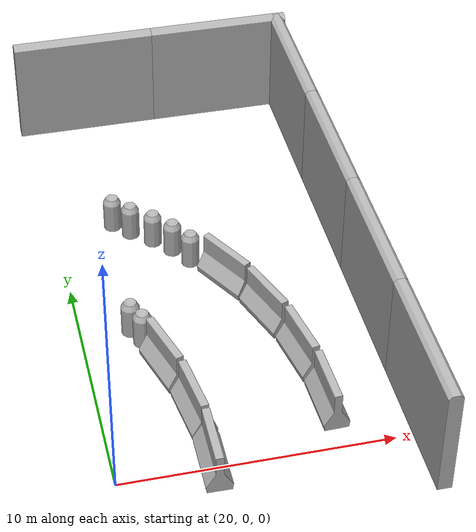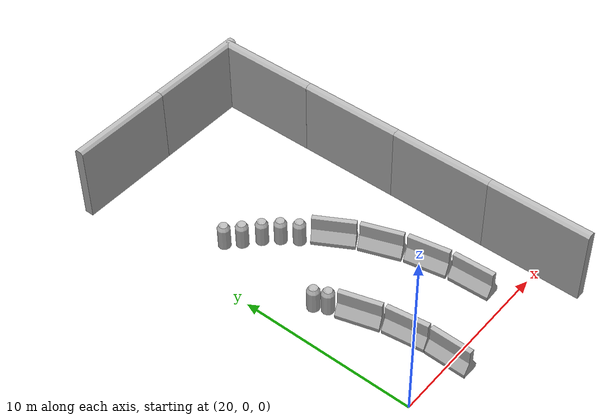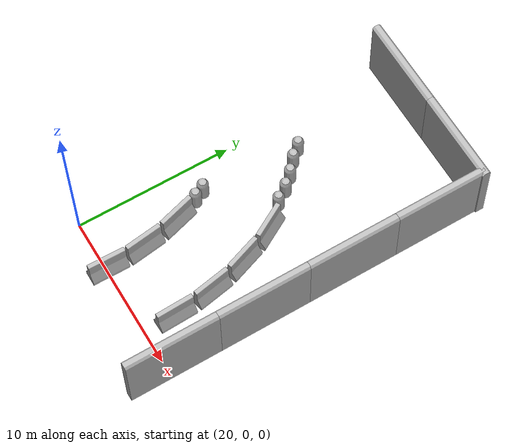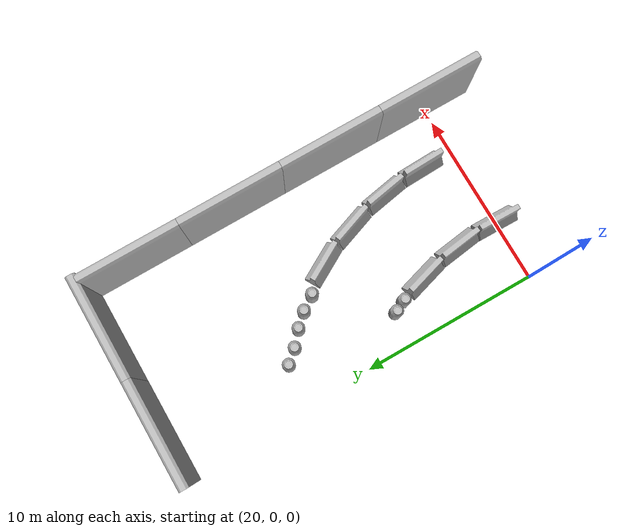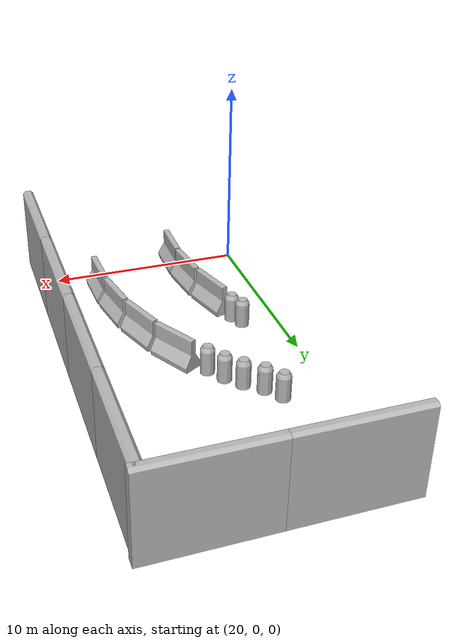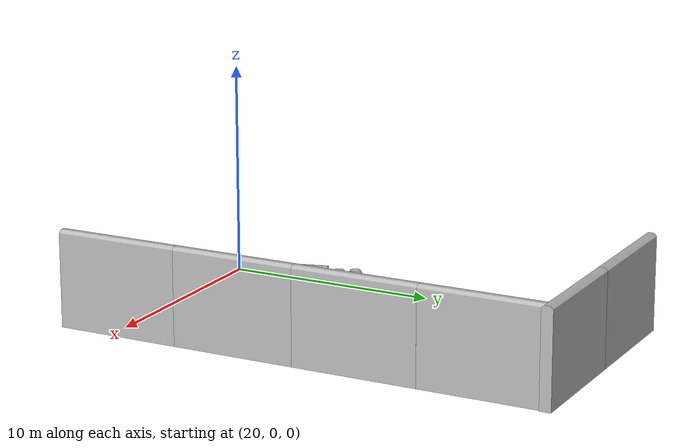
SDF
<sdf version="1.7">
 <world name="default">
  <model name="aws_robomaker_racetrack_CrashworthBucket_01_10">
   <frame name="aws_CrashworthBucket_01::__model__" attached_to="aws_CrashworthBucket_01::body">
    <pose relative_to="__model__">0 0 0 0 -0 0</pose>
   </frame>
   <link name="aws_CrashworthBucket_01::body">
    <pose relative_to="aws_CrashworthBucket_01::__model__">0 0 0 0 -0 0</pose>
    <inertial>
     <mass>5</mass>
     <inertia><ixx>1</ixx><ixy>0</ixy><ixz>0</ixz><iyy>1</iyy><iyz>0</iyz><izz>1</izz></inertia>
    </inertial>
    <visual name="visual">
     <geometry>
      <mesh>
       <uri>file://models/aws_robomaker_racetrack_CrashworthBucket_01/meshes/aws_CrashworthBucket_01_visual.DAE</uri>
      </mesh>
     </geometry>
     <material><shader type="pixel"><normal_map>__default__</normal_map></shader></material>
     <meta><layer>0</layer></meta>
    </visual>
    <collision name="collision_0">
     <geometry>
      <mesh>
       <uri>file://models/aws_robomaker_racetrack_CrashworthBucket_01/meshes/aws_CrashworthBucket_01_collision.DAE</uri>
       <scale>1 1 1</scale>
      </mesh>
     </geometry>
     <surface>
      <friction>
       <ode><mu>1</mu><mu2>1</mu2><fdir1>0 0 0</fdir1><slip1>0</slip1><slip2>0</slip2></ode>
       <torsional>
        <coefficient>1</coefficient>
        <patch_radius>0</patch_radius>
        <surface_radius>0</surface_radius>
        <use_patch_radius>1</use_patch_radius>
        <ode><slip>0</slip></ode>
       </torsional>
      </friction>
      <bounce><restitution_coefficient>0</restitution_coefficient><threshold>1e+06</threshold></bounce>
      <contact>
       <collide_without_contact>0</collide_without_contact>
       <collide_without_contact_bitmask>1</collide_without_contact_bitmask>
       <collide_bitmask>1</collide_bitmask>
       <ode>
        <soft_cfm>0</soft_cfm>
        <soft_erp>0.2</soft_erp>
        <kp>1e+13</kp>
        <kd>1</kd>
        <max_vel>0.01</max_vel>
        <min_depth>0</min_depth>
       </ode>
       <bullet>
        <split_impulse>1</split_impulse>
        <split_impulse_penetration_threshold>-0.01</split_impulse_penetration_threshold>
        <soft_cfm>0</soft_cfm>
        <soft_erp>0.2</soft_erp>
        <kp>1e+13</kp>
        <kd>1</kd>
       </bullet>
      </contact>
     </surface>
    </collision>
   </link>
   <static>1</static>
   <pose>22.2917 13.5697 0 0 -0 0</pose>
  </model>
  <model name="aws_robomaker_racetrack_CrashworthBucket_01_11">
   <frame name="aws_CrashworthBucket_01::__model__" attached_to="aws_CrashworthBucket_01::body">
    <pose relative_to="__model__">0 0 0 0 -0 0</pose>
   </frame>
   <link name="aws_CrashworthBucket_01::body">
    <pose relative_to="aws_CrashworthBucket_01::__model__">0 0 0 0 -0 0</pose>
    <inertial>
     <mass>5</mass>
     <inertia><ixx>1</ixx><ixy>0</ixy><ixz>0</ixz><iyy>1</iyy><iyz>0</iyz><izz>1</izz></inertia>
    </inertial>
    <visual name="visual">
     <geometry>
      <mesh>
       <uri>file://models/aws_robomaker_racetrack_CrashworthBucket_01/meshes/aws_CrashworthBucket_01_visual.DAE</uri>
      </mesh>
     </geometry>
     <material><shader type="pixel"><normal_map>__default__</normal_map></shader></material>
     <meta><layer>0</layer></meta>
    </visual>
    <collision name="collision_0">
     <geometry>
      <mesh>
       <uri>file://models/aws_robomaker_racetrack_CrashworthBucket_01/meshes/aws_CrashworthBucket_01_collision.DAE</uri>
       <scale>1 1 1</scale>
      </mesh>
     </geometry>
     <surface>
      <friction>
       <ode><mu>1</mu><mu2>1</mu2><fdir1>0 0 0</fdir1><slip1>0</slip1><slip2>0</slip2></ode>
       <torsional>
        <coefficient>1</coefficient>
        <patch_radius>0</patch_radius>
        <surface_radius>0</surface_radius>
        <use_patch_radius>1</use_patch_radius>
        <ode><slip>0</slip></ode>
       </torsional>
      </friction>
      <bounce><restitution_coefficient>0</restitution_coefficient><threshold>1e+06</threshold></bounce>
      <contact>
       <collide_without_contact>0</collide_without_contact>
       <collide_without_contact_bitmask>1</collide_without_contact_bitmask>
       <collide_bitmask>1</collide_bitmask>
       <ode>
        <soft_cfm>0</soft_cfm>
        <soft_erp>0.2</soft_erp>
        <kp>1e+13</kp>
        <kd>1</kd>
        <max_vel>0.01</max_vel>
        <min_depth>0</min_depth>
       </ode>
       <bullet>
        <split_impulse>1</split_impulse>
        <split_impulse_penetration_threshold>-0.01</split_impulse_penetration_threshold>
        <soft_cfm>0</soft_cfm>
        <soft_erp>0.2</soft_erp>
        <kp>1e+13</kp>
        <kd>1</kd>
       </bullet>
      </contact>
     </surface>
    </collision>
   </link>
   <static>1</static>
   <pose>22.9018 12.8693 0.054 0 -0 0</pose>
  </model>
  <model name="aws_robomaker_racetrack_CrashworthBucket_01_12">
   <frame name="aws_CrashworthBucket_01::__model__" attached_to="aws_CrashworthBucket_01::body">
    <pose relative_to="__model__">0 0 0 0 -0 0</pose>
   </frame>
   <link name="aws_CrashworthBucket_01::body">
    <pose relative_to="aws_CrashworthBucket_01::__model__">0 0 0 0 -0 0</pose>
    <inertial>
     <mass>5</mass>
     <inertia><ixx>1</ixx><ixy>0</ixy><ixz>0</ixz><iyy>1</iyy><iyz>0</iyz><izz>1</izz></inertia>
    </inertial>
    <visual name="visual">
     <geometry>
      <mesh>
       <uri>file://models/aws_robomaker_racetrack_CrashworthBucket_01/meshes/aws_CrashworthBucket_01_visual.DAE</uri>
      </mesh>
     </geometry>
     <material><shader type="pixel"><normal_map>__default__</normal_map></shader></material>
     <meta><layer>0</layer></meta>
    </visual>
    <collision name="collision_0">
     <geometry>
      <mesh>
       <uri>file://models/aws_robomaker_racetrack_CrashworthBucket_01/meshes/aws_CrashworthBucket_01_collision.DAE</uri>
       <scale>1 1 1</scale>
      </mesh>
     </geometry>
     <surface>
      <friction>
       <ode><mu>1</mu><mu2>1</mu2><fdir1>0 0 0</fdir1><slip1>0</slip1><slip2>0</slip2></ode>
       <torsional>
        <coefficient>1</coefficient>
        <patch_radius>0</patch_radius>
        <surface_radius>0</surface_radius>
        <use_patch_radius>1</use_patch_radius>
        <ode><slip>0</slip></ode>
       </torsional>
      </friction>
      <bounce><restitution_coefficient>0</restitution_coefficient><threshold>1e+06</threshold></bounce>
      <contact>
       <collide_without_contact>0</collide_without_contact>
       <collide_without_contact_bitmask>1</collide_without_contact_bitmask>
       <collide_bitmask>1</collide_bitmask>
       <ode>
        <soft_cfm>0</soft_cfm>
        <soft_erp>0.2</soft_erp>
        <kp>1e+13</kp>
        <kd>1</kd>
        <max_vel>0.01</max_vel>
        <min_depth>0</min_depth>
       </ode>
       <bullet>
        <split_impulse>1</split_impulse>
        <split_impulse_penetration_threshold>-0.01</split_impulse_penetration_threshold>
        <soft_cfm>0</soft_cfm>
        <soft_erp>0.2</soft_erp>
        <kp>1e+13</kp>
        <kd>1</kd>
       </bullet>
      </contact>
     </surface>
    </collision>
   </link>
   <static>1</static>
   <pose>22.2128 6.62693 0.054 0 -0 0</pose>
  </model>
  <model name="aws_robomaker_racetrack_CrashworthBucket_01_29">
   <frame name="aws_CrashworthBucket_01::__model__" attached_to="aws_CrashworthBucket_01::body">
    <pose relative_to="__model__">0 0 0 0 -0 0</pose>
   </frame>
   <link name="aws_CrashworthBucket_01::body">
    <pose relative_to="aws_CrashworthBucket_01::__model__">0 0 0 0 -0 0</pose>
    <inertial>
     <mass>5</mass>
     <inertia><ixx>1</ixx><ixy>0</ixy><ixz>0</ixz><iyy>1</iyy><iyz>0</iyz><izz>1</izz></inertia>
    </inertial>
    <visual name="visual">
     <geometry>
      <mesh>
       <uri>file://models/aws_robomaker_racetrack_CrashworthBucket_01/meshes/aws_CrashworthBucket_01_visual.DAE</uri>
      </mesh>
     </geometry>
     <material><shader type="pixel"><normal_map>__default__</normal_map></shader></material>
     <meta><layer>0</layer></meta>
    </visual>
    <collision name="collision_0">
     <geometry>
      <mesh>
       <uri>file://models/aws_robomaker_racetrack_CrashworthBucket_01/meshes/aws_CrashworthBucket_01_collision.DAE</uri>
       <scale>1 1 1</scale>
      </mesh>
     </geometry>
     <surface>
      <friction>
       <ode><mu>1</mu><mu2>1</mu2><fdir1>0 0 0</fdir1><slip1>0</slip1><slip2>0</slip2></ode>
       <torsional>
        <coefficient>1</coefficient>
        <patch_radius>0</patch_radius>
        <surface_radius>0</surface_radius>
        <use_patch_radius>1</use_patch_radius>
        <ode><slip>0</slip></ode>
       </torsional>
      </friction>
      <bounce><restitution_coefficient>0</restitution_coefficient><threshold>1e+06</threshold></bounce>
      <contact>
       <collide_without_contact>0</collide_without_contact>
       <collide_without_contact_bitmask>1</collide_without_contact_bitmask>
       <collide_bitmask>1</collide_bitmask>
       <ode>
        <soft_cfm>0</soft_cfm>
        <soft_erp>0.2</soft_erp>
        <kp>1e+13</kp>
        <kd>1</kd>
        <max_vel>0.01</max_vel>
        <min_depth>0</min_depth>
       </ode>
       <bullet>
        <split_impulse>1</split_impulse>
        <split_impulse_penetration_threshold>-0.01</split_impulse_penetration_threshold>
        <soft_cfm>0</soft_cfm>
        <soft_erp>0.2</soft_erp>
        <kp>1e+13</kp>
        <kd>1</kd>
       </bullet>
      </contact>
     </surface>
    </collision>
   </link>
   <static>1</static>
   <pose>23.6827 12.1956 0.054 0 -0 0</pose>
  </model>
  <model name="aws_robomaker_racetrack_CrashworthBucket_01_30">
   <frame name="aws_CrashworthBucket_01::__model__" attached_to="aws_CrashworthBucket_01::body">
    <pose relative_to="__model__">0 0 0 0 -0 0</pose>
   </frame>
   <link name="aws_CrashworthBucket_01::body">
    <pose relative_to="aws_CrashworthBucket_01::__model__">0 0 0 0 -0 0</pose>
    <inertial>
     <mass>5</mass>
     <inertia><ixx>1</ixx><ixy>0</ixy><ixz>0</ixz><iyy>1</iyy><iyz>0</iyz><izz>1</izz></inertia>
    </inertial>
    <visual name="visual">
     <geometry>
      <mesh>
       <uri>file://models/aws_robomaker_racetrack_CrashworthBucket_01/meshes/aws_CrashworthBucket_01_visual.DAE</uri>
      </mesh>
     </geometry>
     <material><shader type="pixel"><normal_map>__default__</normal_map></shader></material>
     <meta><layer>0</layer></meta>
    </visual>
    <collision name="collision_0">
     <geometry>
      <mesh>
       <uri>file://models/aws_robomaker_racetrack_CrashworthBucket_01/meshes/aws_CrashworthBucket_01_collision.DAE</uri>
       <scale>1 1 1</scale>
      </mesh>
     </geometry>
     <surface>
      <friction>
       <ode><mu>1</mu><mu2>1</mu2><fdir1>0 0 0</fdir1><slip1>0</slip1><slip2>0</slip2></ode>
       <torsional>
        <coefficient>1</coefficient>
        <patch_radius>0</patch_radius>
        <surface_radius>0</surface_radius>
        <use_patch_radius>1</use_patch_radius>
        <ode><slip>0</slip></ode>
       </torsional>
      </friction>
      <bounce><restitution_coefficient>0</restitution_coefficient><threshold>1e+06</threshold></bounce>
      <contact>
       <collide_without_contact>0</collide_without_contact>
       <collide_without_contact_bitmask>1</collide_without_contact_bitmask>
       <collide_bitmask>1</collide_bitmask>
       <ode>
        <soft_cfm>0</soft_cfm>
        <soft_erp>0.2</soft_erp>
        <kp>1e+13</kp>
        <kd>1</kd>
        <max_vel>0.01</max_vel>
        <min_depth>0</min_depth>
       </ode>
       <bullet>
        <split_impulse>1</split_impulse>
        <split_impulse_penetration_threshold>-0.01</split_impulse_penetration_threshold>
        <soft_cfm>0</soft_cfm>
        <soft_erp>0.2</soft_erp>
        <kp>1e+13</kp>
        <kd>1</kd>
       </bullet>
      </contact>
     </surface>
    </collision>
   </link>
   <static>1</static>
   <pose>24.3346 11.4874 0.054 0 -0 0</pose>
  </model>
  <model name="aws_robomaker_racetrack_CrashworthBucket_01_31">
   <frame name="aws_CrashworthBucket_01::__model__" attached_to="aws_CrashworthBucket_01::body">
    <pose relative_to="__model__">0 0 0 0 -0 0</pose>
   </frame>
   <link name="aws_CrashworthBucket_01::body">
    <pose relative_to="aws_CrashworthBucket_01::__model__">0 0 0 0 -0 0</pose>
    <inertial>
     <mass>5</mass>
     <inertia><ixx>1</ixx><ixy>0</ixy><ixz>0</ixz><iyy>1</iyy><iyz>0</iyz><izz>1</izz></inertia>
    </inertial>
    <visual name="visual">
     <geometry>
      <mesh>
       <uri>file://models/aws_robomaker_racetrack_CrashworthBucket_01/meshes/aws_CrashworthBucket_01_visual.DAE</uri>
      </mesh>
     </geometry>
     <material><shader type="pixel"><normal_map>__default__</normal_map></shader></material>
     <meta><layer>0</layer></meta>
    </visual>
    <collision name="collision_0">
     <geometry>
      <mesh>
       <uri>file://models/aws_robomaker_racetrack_CrashworthBucket_01/meshes/aws_CrashworthBucket_01_collision.DAE</uri>
       <scale>1 1 1</scale>
      </mesh>
     </geometry>
     <surface>
      <friction>
       <ode><mu>1</mu><mu2>1</mu2><fdir1>0 0 0</fdir1><slip1>0</slip1><slip2>0</slip2></ode>
       <torsional>
        <coefficient>1</coefficient>
        <patch_radius>0</patch_radius>
        <surface_radius>0</surface_radius>
        <use_patch_radius>1</use_patch_radius>
        <ode><slip>0</slip></ode>
       </torsional>
      </friction>
      <bounce><restitution_coefficient>0</restitution_coefficient><threshold>1e+06</threshold></bounce>
      <contact>
       <collide_without_contact>0</collide_without_contact>
       <collide_without_contact_bitmask>1</collide_without_contact_bitmask>
       <collide_bitmask>1</collide_bitmask>
       <ode>
        <soft_cfm>0</soft_cfm>
        <soft_erp>0.2</soft_erp>
        <kp>1e+13</kp>
        <kd>1</kd>
        <max_vel>0.01</max_vel>
        <min_depth>0</min_depth>
       </ode>
       <bullet>
        <split_impulse>1</split_impulse>
        <split_impulse_penetration_threshold>-0.01</split_impulse_penetration_threshold>
        <soft_cfm>0</soft_cfm>
        <soft_erp>0.2</soft_erp>
        <kp>1e+13</kp>
        <kd>1</kd>
       </bullet>
      </contact>
     </surface>
    </collision>
   </link>
   <static>1</static>
   <pose>24.8882 10.6788 0.054 0 -0 0</pose>
  </model>
  <model name="aws_robomaker_racetrack_CrashworthBucket_01_37">
   <frame name="aws_CrashworthBucket_01::__model__" attached_to="aws_CrashworthBucket_01::body">
    <pose relative_to="__model__">0 0 0 0 -0 0</pose>
   </frame>
   <link name="aws_CrashworthBucket_01::body">
    <pose relative_to="aws_CrashworthBucket_01::__model__">0 0 0 0 -0 0</pose>
    <inertial>
     <mass>5</mass>
     <inertia><ixx>1</ixx><ixy>0</ixy><ixz>0</ixz><iyy>1</iyy><iyz>0</iyz><izz>1</izz></inertia>
    </inertial>
    <visual name="visual">
     <geometry>
      <mesh>
       <uri>file://models/aws_robomaker_racetrack_CrashworthBucket_01/meshes/aws_CrashworthBucket_01_visual.DAE</uri>
      </mesh>
     </geometry>
     <material><shader type="pixel"><normal_map>__default__</normal_map></shader></material>
     <meta><layer>0</layer></meta>
    </visual>
    <collision name="collision_0">
     <geometry>
      <mesh>
       <uri>file://models/aws_robomaker_racetrack_CrashworthBucket_01/meshes/aws_CrashworthBucket_01_collision.DAE</uri>
       <scale>1 1 1</scale>
      </mesh>
     </geometry>
     <surface>
      <friction>
       <ode><mu>1</mu><mu2>1</mu2><fdir1>0 0 0</fdir1><slip1>0</slip1><slip2>0</slip2></ode>
       <torsional>
        <coefficient>1</coefficient>
        <patch_radius>0</patch_radius>
        <surface_radius>0</surface_radius>
        <use_patch_radius>1</use_patch_radius>
        <ode><slip>0</slip></ode>
       </torsional>
      </friction>
      <bounce><restitution_coefficient>0</restitution_coefficient><threshold>1e+06</threshold></bounce>
      <contact>
       <collide_without_contact>0</collide_without_contact>
       <collide_without_contact_bitmask>1</collide_without_contact_bitmask>
       <collide_bitmask>1</collide_bitmask>
       <ode>
        <soft_cfm>0</soft_cfm>
        <soft_erp>0.2</soft_erp>
        <kp>1e+13</kp>
        <kd>1</kd>
        <max_vel>0.01</max_vel>
        <min_depth>0</min_depth>
       </ode>
       <bullet>
        <split_impulse>1</split_impulse>
        <split_impulse_penetration_threshold>-0.01</split_impulse_penetration_threshold>
        <soft_cfm>0</soft_cfm>
        <soft_erp>0.2</soft_erp>
        <kp>1e+13</kp>
        <kd>1</kd>
       </bullet>
      </contact>
     </surface>
    </collision>
   </link>
   <static>1</static>
   <pose>21.8874 7.29413 0.054 0 -0 0</pose>
  </model>
  <model name="aws_robomaker_racetrack_StonePier_01_10">
   <frame name="aws_StonePier_01::__model__" attached_to="aws_StonePier_01::body">
    <pose relative_to="__model__">0 0 0 0 -0 0</pose>
   </frame>
   <link name="aws_StonePier_01::body">
    <pose relative_to="aws_StonePier_01::__model__">0 0 0 0 -0 0</pose>
    <inertial>
     <mass>10</mass>
     <inertia><ixx>0</ixx><ixy>0</ixy><ixz>0</ixz><iyy>0</iyy><iyz>0</iyz><izz>0</izz></inertia>
    </inertial>
    <visual name="visual">
     <geometry>
      <mesh><uri>file://models/aws_robomaker_racetrack_StonePier_01/meshes/aws_StonePier_01_visual.DAE</uri></mesh>
     </geometry>
     <material><shader type="pixel"><normal_map>__default__</normal_map></shader></material>
     <meta><layer>0</layer></meta>
    </visual>
    <collision name="collision_0">
     <geometry>
      <mesh>
       <uri>file://models/aws_robomaker_racetrack_StonePier_01/meshes/aws_StonePier_01_collision.DAE</uri>
       <scale>1 1 1</scale>
      </mesh>
     </geometry>
     <surface>
      <friction>
       <ode><mu>1</mu><mu2>1</mu2><fdir1>0 0 0</fdir1><slip1>0</slip1><slip2>0</slip2></ode>
       <torsional>
        <coefficient>1</coefficient>
        <patch_radius>0</patch_radius>
        <surface_radius>0</surface_radius>
        <use_patch_radius>1</use_patch_radius>
        <ode><slip>0</slip></ode>
       </torsional>
      </friction>
      <bounce><restitution_coefficient>0</restitution_coefficient><threshold>1e+06</threshold></bounce>
      <contact>
       <collide_without_contact>0</collide_without_contact>
       <collide_without_contact_bitmask>1</collide_without_contact_bitmask>
       <collide_bitmask>1</collide_bitmask>
       <ode>
        <soft_cfm>0</soft_cfm>
        <soft_erp>0.2</soft_erp>
        <kp>1e+13</kp>
        <kd>1</kd>
        <max_vel>0.01</max_vel>
        <min_depth>0</min_depth>
       </ode>
       <bullet>
        <split_impulse>1</split_impulse>
        <split_impulse_penetration_threshold>-0.01</split_impulse_penetration_threshold>
        <soft_cfm>0</soft_cfm>
        <soft_erp>0.2</soft_erp>
        <kp>1e+13</kp>
        <kd>1</kd>
       </bullet>
      </contact>
     </surface>
    </collision>
   </link>
   <static>1</static>
   <pose>22.7563 5.03589 0.054 0 0 -1.28348</pose>
  </model>
  <model name="aws_robomaker_racetrack_StonePier_01_11">
   <frame name="aws_StonePier_01::__model__" attached_to="aws_StonePier_01::body">
    <pose relative_to="__model__">0 0 0 0 -0 0</pose>
   </frame>
   <link name="aws_StonePier_01::body">
    <pose relative_to="aws_StonePier_01::__model__">0 0 0 0 -0 0</pose>
    <inertial>
     <mass>10</mass>
     <inertia><ixx>0</ixx><ixy>0</ixy><ixz>0</ixz><iyy>0</iyy><iyz>0</iyz><izz>0</izz></inertia>
    </inertial>
    <visual name="visual">
     <geometry>
      <mesh><uri>file://models/aws_robomaker_racetrack_StonePier_01/meshes/aws_StonePier_01_visual.DAE</uri></mesh>
     </geometry>
     <material><shader type="pixel"><normal_map>__default__</normal_map></shader></material>
     <meta><layer>0</layer></meta>
    </visual>
    <collision name="collision_0">
     <geometry>
      <mesh>
       <uri>file://models/aws_robomaker_racetrack_StonePier_01/meshes/aws_StonePier_01_collision.DAE</uri>
       <scale>1 1 1</scale>
      </mesh>
     </geometry>
     <surface>
      <friction>
       <ode><mu>1</mu><mu2>1</mu2><fdir1>0 0 0</fdir1><slip1>0</slip1><slip2>0</slip2></ode>
       <torsional>
        <coefficient>1</coefficient>
        <patch_radius>0</patch_radius>
        <surface_radius>0</surface_radius>
        <use_patch_radius>1</use_patch_radius>
        <ode><slip>0</slip></ode>
       </torsional>
      </friction>
      <bounce><restitution_coefficient>0</restitution_coefficient><threshold>1e+06</threshold></bounce>
      <contact>
       <collide_without_contact>0</collide_without_contact>
       <collide_without_contact_bitmask>1</collide_without_contact_bitmask>
       <collide_bitmask>1</collide_bitmask>
       <ode>
        <soft_cfm>0</soft_cfm>
        <soft_erp>0.2</soft_erp>
        <kp>1e+13</kp>
        <kd>1</kd>
        <max_vel>0.01</max_vel>
        <min_depth>0</min_depth>
       </ode>
       <bullet>
        <split_impulse>1</split_impulse>
        <split_impulse_penetration_threshold>-0.01</split_impulse_penetration_threshold>
        <soft_cfm>0</soft_cfm>
        <soft_erp>0.2</soft_erp>
        <kp>1e+13</kp>
        <kd>1</kd>
       </bullet>
      </contact>
     </surface>
    </collision>
   </link>
   <static>1</static>
   <pose>23.2964 2.57509 0.054 0 0 -1.43498</pose>
  </model>
  <model name="aws_robomaker_racetrack_StonePier_01_12">
   <frame name="aws_StonePier_01::__model__" attached_to="aws_StonePier_01::body">
    <pose relative_to="__model__">0 0 0 0 -0 0</pose>
   </frame>
   <link name="aws_StonePier_01::body">
    <pose relative_to="aws_StonePier_01::__model__">0 0 0 0 -0 0</pose>
    <inertial>
     <mass>10</mass>
     <inertia><ixx>0</ixx><ixy>0</ixy><ixz>0</ixz><iyy>0</iyy><iyz>0</iyz><izz>0</izz></inertia>
    </inertial>
    <visual name="visual">
     <geometry>
      <mesh><uri>file://models/aws_robomaker_racetrack_StonePier_01/meshes/aws_StonePier_01_visual.DAE</uri></mesh>
     </geometry>
     <material><shader type="pixel"><normal_map>__default__</normal_map></shader></material>
     <meta><layer>0</layer></meta>
    </visual>
    <collision name="collision_0">
     <geometry>
      <mesh>
       <uri>file://models/aws_robomaker_racetrack_StonePier_01/meshes/aws_StonePier_01_collision.DAE</uri>
       <scale>1 1 1</scale>
      </mesh>
     </geometry>
     <surface>
      <friction>
       <ode><mu>1</mu><mu2>1</mu2><fdir1>0 0 0</fdir1><slip1>0</slip1><slip2>0</slip2></ode>
       <torsional>
        <coefficient>1</coefficient>
        <patch_radius>0</patch_radius>
        <surface_radius>0</surface_radius>
        <use_patch_radius>1</use_patch_radius>
        <ode><slip>0</slip></ode>
       </torsional>
      </friction>
      <bounce><restitution_coefficient>0</restitution_coefficient><threshold>1e+06</threshold></bounce>
      <contact>
       <collide_without_contact>0</collide_without_contact>
       <collide_without_contact_bitmask>1</collide_without_contact_bitmask>
       <collide_bitmask>1</collide_bitmask>
       <ode>
        <soft_cfm>0</soft_cfm>
        <soft_erp>0.2</soft_erp>
        <kp>1e+13</kp>
        <kd>1</kd>
        <max_vel>0.01</max_vel>
        <min_depth>0</min_depth>
       </ode>
       <bullet>
        <split_impulse>1</split_impulse>
        <split_impulse_penetration_threshold>-0.01</split_impulse_penetration_threshold>
        <soft_cfm>0</soft_cfm>
        <soft_erp>0.2</soft_erp>
        <kp>1e+13</kp>
        <kd>1</kd>
       </bullet>
      </contact>
     </surface>
    </collision>
   </link>
   <static>1</static>
   <pose>23.4326 0.10745 0.054 0 0 -1.58404</pose>
  </model>
  <model name="aws_robomaker_racetrack_StonePier_01_26">
   <frame name="aws_StonePier_01::__model__" attached_to="aws_StonePier_01::body">
    <pose relative_to="__model__">0 0 0 0 -0 0</pose>
   </frame>
   <link name="aws_StonePier_01::body">
    <pose relative_to="aws_StonePier_01::__model__">0 0 0 0 -0 0</pose>
    <inertial>
     <mass>10</mass>
     <inertia><ixx>0</ixx><ixy>0</ixy><ixz>0</ixz><iyy>0</iyy><iyz>0</iyz><izz>0</izz></inertia>
    </inertial>
    <visual name="visual">
     <geometry>
      <mesh><uri>file://models/aws_robomaker_racetrack_StonePier_01/meshes/aws_StonePier_01_visual.DAE</uri></mesh>
     </geometry>
     <material><shader type="pixel"><normal_map>__default__</normal_map></shader></material>
     <meta><layer>0</layer></meta>
    </visual>
    <collision name="collision_0">
     <geometry>
      <mesh>
       <uri>file://models/aws_robomaker_racetrack_StonePier_01/meshes/aws_StonePier_01_collision.DAE</uri>
       <scale>1 1 1</scale>
      </mesh>
     </geometry>
     <surface>
      <friction>
       <ode><mu>1</mu><mu2>1</mu2><fdir1>0 0 0</fdir1><slip1>0</slip1><slip2>0</slip2></ode>
       <torsional>
        <coefficient>1</coefficient>
        <patch_radius>0</patch_radius>
        <surface_radius>0</surface_radius>
        <use_patch_radius>1</use_patch_radius>
        <ode><slip>0</slip></ode>
       </torsional>
      </friction>
      <bounce><restitution_coefficient>0</restitution_coefficient><threshold>1e+06</threshold></bounce>
      <contact>
       <collide_without_contact>0</collide_without_contact>
       <collide_without_contact_bitmask>1</collide_without_contact_bitmask>
       <collide_bitmask>1</collide_bitmask>
       <ode>
        <soft_cfm>0</soft_cfm>
        <soft_erp>0.2</soft_erp>
        <kp>1e+13</kp>
        <kd>1</kd>
        <max_vel>0.01</max_vel>
        <min_depth>0</min_depth>
       </ode>
       <bullet>
        <split_impulse>1</split_impulse>
        <split_impulse_penetration_threshold>-0.01</split_impulse_penetration_threshold>
        <soft_cfm>0</soft_cfm>
        <soft_erp>0.2</soft_erp>
        <kp>1e+13</kp>
        <kd>1</kd>
       </bullet>
      </contact>
     </surface>
    </collision>
   </link>
   <static>1</static>
   <pose>27.7466 4.53211 0.054 0 -0 1.75246</pose>
  </model>
  <model name="aws_robomaker_racetrack_StonePier_01_27">
   <frame name="aws_StonePier_01::__model__" attached_to="aws_StonePier_01::body">
    <pose relative_to="__model__">0 0 0 0 -0 0</pose>
   </frame>
   <link name="aws_StonePier_01::body">
    <pose relative_to="aws_StonePier_01::__model__">0 0 0 0 -0 0</pose>
    <inertial>
     <mass>10</mass>
     <inertia><ixx>0</ixx><ixy>0</ixy><ixz>0</ixz><iyy>0</iyy><iyz>0</iyz><izz>0</izz></inertia>
    </inertial>
    <visual name="visual">
     <geometry>
      <mesh><uri>file://models/aws_robomaker_racetrack_StonePier_01/meshes/aws_StonePier_01_visual.DAE</uri></mesh>
     </geometry>
     <material><shader type="pixel"><normal_map>__default__</normal_map></shader></material>
     <meta><layer>0</layer></meta>
    </visual>
    <collision name="collision_0">
     <geometry>
      <mesh>
       <uri>file://models/aws_robomaker_racetrack_StonePier_01/meshes/aws_StonePier_01_collision.DAE</uri>
       <scale>1 1 1</scale>
      </mesh>
     </geometry>
     <surface>
      <friction>
       <ode><mu>1</mu><mu2>1</mu2><fdir1>0 0 0</fdir1><slip1>0</slip1><slip2>0</slip2></ode>
       <torsional>
        <coefficient>1</coefficient>
        <patch_radius>0</patch_radius>
        <surface_radius>0</surface_radius>
        <use_patch_radius>1</use_patch_radius>
        <ode><slip>0</slip></ode>
       </torsional>
      </friction>
      <bounce><restitution_coefficient>0</restitution_coefficient><threshold>1e+06</threshold></bounce>
      <contact>
       <collide_without_contact>0</collide_without_contact>
       <collide_without_contact_bitmask>1</collide_without_contact_bitmask>
       <collide_bitmask>1</collide_bitmask>
       <ode>
        <soft_cfm>0</soft_cfm>
        <soft_erp>0.2</soft_erp>
        <kp>1e+13</kp>
        <kd>1</kd>
        <max_vel>0.01</max_vel>
        <min_depth>0</min_depth>
       </ode>
       <bullet>
        <split_impulse>1</split_impulse>
        <split_impulse_penetration_threshold>-0.01</split_impulse_penetration_threshold>
        <soft_cfm>0</soft_cfm>
        <soft_erp>0.2</soft_erp>
        <kp>1e+13</kp>
        <kd>1</kd>
       </bullet>
      </contact>
     </surface>
    </collision>
   </link>
   <static>1</static>
   <pose>27.0691 6.99271 0.054 0 -0 1.91654</pose>
  </model>
  <model name="aws_robomaker_racetrack_StonePier_01_28">
   <frame name="aws_StonePier_01::__model__" attached_to="aws_StonePier_01::body">
    <pose relative_to="__model__">0 0 0 0 -0 0</pose>
   </frame>
   <link name="aws_StonePier_01::body">
    <pose relative_to="aws_StonePier_01::__model__">0 0 0 0 -0 0</pose>
    <inertial>
     <mass>10</mass>
     <inertia><ixx>0</ixx><ixy>0</ixy><ixz>0</ixz><iyy>0</iyy><iyz>0</iyz><izz>0</izz></inertia>
    </inertial>
    <visual name="visual">
     <geometry>
      <mesh><uri>file://models/aws_robomaker_racetrack_StonePier_01/meshes/aws_StonePier_01_visual.DAE</uri></mesh>
     </geometry>
     <material><shader type="pixel"><normal_map>__default__</normal_map></shader></material>
     <meta><layer>0</layer></meta>
    </visual>
    <collision name="collision_0">
     <geometry>
      <mesh>
       <uri>file://models/aws_robomaker_racetrack_StonePier_01/meshes/aws_StonePier_01_collision.DAE</uri>
       <scale>1 1 1</scale>
      </mesh>
     </geometry>
     <surface>
      <friction>
       <ode><mu>1</mu><mu2>1</mu2><fdir1>0 0 0</fdir1><slip1>0</slip1><slip2>0</slip2></ode>
       <torsional>
        <coefficient>1</coefficient>
        <patch_radius>0</patch_radius>
        <surface_radius>0</surface_radius>
        <use_patch_radius>1</use_patch_radius>
        <ode><slip>0</slip></ode>
       </torsional>
      </friction>
      <bounce><restitution_coefficient>0</restitution_coefficient><threshold>1e+06</threshold></bounce>
      <contact>
       <collide_without_contact>0</collide_without_contact>
       <collide_without_contact_bitmask>1</collide_without_contact_bitmask>
       <collide_bitmask>1</collide_bitmask>
       <ode>
        <soft_cfm>0</soft_cfm>
        <soft_erp>0.2</soft_erp>
        <kp>1e+13</kp>
        <kd>1</kd>
        <max_vel>0.01</max_vel>
        <min_depth>0</min_depth>
       </ode>
       <bullet>
        <split_impulse>1</split_impulse>
        <split_impulse_penetration_threshold>-0.01</split_impulse_penetration_threshold>
        <soft_cfm>0</soft_cfm>
        <soft_erp>0.2</soft_erp>
        <kp>1e+13</kp>
        <kd>1</kd>
       </bullet>
      </contact>
     </surface>
    </collision>
   </link>
   <static>1</static>
   <pose>26.0366 9.29805 0.054 0 -0 2.08782</pose>
  </model>
  <model name="aws_robomaker_racetrack_StonePier_01_31">
   <frame name="aws_StonePier_01::__model__" attached_to="aws_StonePier_01::body">
    <pose relative_to="__model__">0 0 0 0 -0 0</pose>
   </frame>
   <link name="aws_StonePier_01::body">
    <pose relative_to="aws_StonePier_01::__model__">0 0 0 0 -0 0</pose>
    <inertial>
     <mass>10</mass>
     <inertia><ixx>0</ixx><ixy>0</ixy><ixz>0</ixz><iyy>0</iyy><iyz>0</iyz><izz>0</izz></inertia>
    </inertial>
    <visual name="visual">
     <geometry>
      <mesh><uri>file://models/aws_robomaker_racetrack_StonePier_01/meshes/aws_StonePier_01_visual.DAE</uri></mesh>
     </geometry>
     <material><shader type="pixel"><normal_map>__default__</normal_map></shader></material>
     <meta><layer>0</layer></meta>
    </visual>
    <collision name="collision_0">
     <geometry>
      <mesh>
       <uri>file://models/aws_robomaker_racetrack_StonePier_01/meshes/aws_StonePier_01_collision.DAE</uri>
       <scale>1 1 1</scale>
      </mesh>
     </geometry>
     <surface>
      <friction>
       <ode><mu>1</mu><mu2>1</mu2><fdir1>0 0 0</fdir1><slip1>0</slip1><slip2>0</slip2></ode>
       <torsional>
        <coefficient>1</coefficient>
        <patch_radius>0</patch_radius>
        <surface_radius>0</surface_radius>
        <use_patch_radius>1</use_patch_radius>
        <ode><slip>0</slip></ode>
       </torsional>
      </friction>
      <bounce><restitution_coefficient>0</restitution_coefficient><threshold>1e+06</threshold></bounce>
      <contact>
       <collide_without_contact>0</collide_without_contact>
       <collide_without_contact_bitmask>1</collide_without_contact_bitmask>
       <collide_bitmask>1</collide_bitmask>
       <ode>
        <soft_cfm>0</soft_cfm>
        <soft_erp>0.2</soft_erp>
        <kp>1e+13</kp>
        <kd>1</kd>
        <max_vel>0.01</max_vel>
        <min_depth>0</min_depth>
       </ode>
       <bullet>
        <split_impulse>1</split_impulse>
        <split_impulse_penetration_threshold>-0.01</split_impulse_penetration_threshold>
        <soft_cfm>0</soft_cfm>
        <soft_erp>0.2</soft_erp>
        <kp>1e+13</kp>
        <kd>1</kd>
       </bullet>
      </contact>
     </surface>
    </collision>
   </link>
   <static>1</static>
   <pose>28.0314 1.9989 0.054 0 0 -1.53351</pose>
  </model>
  <model name="aws_robomaker_racetrack_Wall_01_22">
   <frame name="aws_Wall_01::__model__" attached_to="aws_Wall_01::body">
    <pose relative_to="__model__">0 0 0 0 -0 0</pose>
   </frame>
   <link name="aws_Wall_01::body">
    <pose relative_to="aws_Wall_01::__model__">0 0 0 0 -0 0</pose>
    <inertial>
     <mass>500</mass>
     <inertia><ixx>1</ixx><ixy>0</ixy><ixz>0</ixz><iyy>1</iyy><iyz>0</iyz><izz>1</izz></inertia>
    </inertial>
    <visual name="visual">
     <geometry>
      <mesh>
       <uri>file://models/aws_robomaker_racetrack_Wall_01/meshes/aws_Wall_01_visual.DAE</uri>
       <scale>2.59853 2.59853 2.59853</scale>
      </mesh>
     </geometry>
     <material><shader type="pixel"><normal_map>__default__</normal_map></shader></material>
     <meta><layer>1</layer></meta>
    </visual>
    <collision name="collision_0">
     <geometry>
      <mesh>
       <uri>file://models/aws_robomaker_racetrack_Wall_01/meshes/aws_Wall_01_collision.DAE</uri>
       <scale>2.59853 2.59853 2.59853</scale>
      </mesh>
     </geometry>
     <surface>
      <friction>
       <ode><mu>1</mu><mu2>1</mu2><fdir1>0 0 0</fdir1><slip1>0</slip1><slip2>0</slip2></ode>
       <torsional>
        <coefficient>1</coefficient>
        <patch_radius>0</patch_radius>
        <surface_radius>0</surface_radius>
        <use_patch_radius>1</use_patch_radius>
        <ode><slip>0</slip></ode>
       </torsional>
      </friction>
      <bounce><restitution_coefficient>0</restitution_coefficient><threshold>1e+06</threshold></bounce>
      <contact>
       <collide_without_contact>0</collide_without_contact>
       <collide_without_contact_bitmask>1</collide_without_contact_bitmask>
       <collide_bitmask>1</collide_bitmask>
       <ode>
        <soft_cfm>0</soft_cfm>
        <soft_erp>0.2</soft_erp>
        <kp>1e+13</kp>
        <kd>1</kd>
        <max_vel>0.01</max_vel>
        <min_depth>0</min_depth>
       </ode>
       <bullet>
        <split_impulse>1</split_impulse>
        <split_impulse_penetration_threshold>-0.01</split_impulse_penetration_threshold>
        <soft_cfm>0</soft_cfm>
        <soft_erp>0.2</soft_erp>
        <kp>1e+13</kp>
        <kd>1</kd>
       </bullet>
      </contact>
     </surface>
    </collision>
   </link>
   <static>1</static>
   <pose>22.3987 20.6806 0 0 -0 0</pose>
  </model>
  <model name="aws_robomaker_racetrack_Wall_01_23">
   <frame name="aws_Wall_01::__model__" attached_to="aws_Wall_01::body">
    <pose relative_to="__model__">0 0 0 0 -0 0</pose>
   </frame>
   <link name="aws_Wall_01::body">
    <pose relative_to="aws_Wall_01::__model__">0 0 0 0 -0 0</pose>
    <inertial>
     <mass>500</mass>
     <inertia><ixx>1</ixx><ixy>0</ixy><ixz>0</ixz><iyy>1</iyy><iyz>0</iyz><izz>1</izz></inertia>
    </inertial>
    <visual name="visual">
     <geometry>
      <mesh>
       <uri>file://models/aws_robomaker_racetrack_Wall_01/meshes/aws_Wall_01_visual.DAE</uri>
       <scale>2.59853 2.59853 2.59853</scale>
      </mesh>
     </geometry>
     <material><shader type="pixel"><normal_map>__default__</normal_map></shader></material>
     <meta><layer>1</layer></meta>
    </visual>
    <collision name="collision_0">
     <geometry>
      <mesh>
       <uri>file://models/aws_robomaker_racetrack_Wall_01/meshes/aws_Wall_01_collision.DAE</uri>
       <scale>2.59853 2.59853 2.59853</scale>
      </mesh>
     </geometry>
     <surface>
      <friction>
       <ode><mu>1</mu><mu2>1</mu2><fdir1>0 0 0</fdir1><slip1>0</slip1><slip2>0</slip2></ode>
       <torsional>
        <coefficient>1</coefficient>
        <patch_radius>0</patch_radius>
        <surface_radius>0</surface_radius>
        <use_patch_radius>1</use_patch_radius>
        <ode><slip>0</slip></ode>
       </torsional>
      </friction>
      <bounce><restitution_coefficient>0</restitution_coefficient><threshold>1e+06</threshold></bounce>
      <contact>
       <collide_without_contact>0</collide_without_contact>
       <collide_without_contact_bitmask>1</collide_without_contact_bitmask>
       <collide_bitmask>1</collide_bitmask>
       <ode>
        <soft_cfm>0</soft_cfm>
        <soft_erp>0.2</soft_erp>
        <kp>1e+13</kp>
        <kd>1</kd>
        <max_vel>0.01</max_vel>
        <min_depth>0</min_depth>
       </ode>
       <bullet>
        <split_impulse>1</split_impulse>
        <split_impulse_penetration_threshold>-0.01</split_impulse_penetration_threshold>
        <soft_cfm>0</soft_cfm>
        <soft_erp>0.2</soft_erp>
        <kp>1e+13</kp>
        <kd>1</kd>
       </bullet>
      </contact>
     </surface>
    </collision>
   </link>
   <static>1</static>
   <pose>28.2373 20.6833 0 0 -0 0</pose>
  </model>
  <model name="aws_robomaker_racetrack_Wall_01_36">
   <frame name="aws_Wall_01::__model__" attached_to="aws_Wall_01::body">
    <pose relative_to="__model__">0 0 0 0 -0 0</pose>
   </frame>
   <link name="aws_Wall_01::body">
    <pose relative_to="aws_Wall_01::__model__">0 0 0 0 -0 0</pose>
    <inertial>
     <mass>500</mass>
     <inertia><ixx>1</ixx><ixy>0</ixy><ixz>0</ixz><iyy>1</iyy><iyz>0</iyz><izz>1</izz></inertia>
    </inertial>
    <visual name="visual">
     <geometry>
      <mesh>
       <uri>file://models/aws_robomaker_racetrack_Wall_01/meshes/aws_Wall_01_visual.DAE</uri>
       <scale>2.59853 2.59853 2.59853</scale>
      </mesh>
     </geometry>
     <material><shader type="pixel"><normal_map>__default__</normal_map></shader></material>
     <meta><layer>1</layer></meta>
    </visual>
    <collision name="collision_0">
     <geometry>
      <mesh>
       <uri>file://models/aws_robomaker_racetrack_Wall_01/meshes/aws_Wall_01_collision.DAE</uri>
       <scale>2.59853 2.59853 2.59853</scale>
      </mesh>
     </geometry>
     <surface>
      <friction>
       <ode><mu>1</mu><mu2>1</mu2><fdir1>0 0 0</fdir1><slip1>0</slip1><slip2>0</slip2></ode>
       <torsional>
        <coefficient>1</coefficient>
        <patch_radius>0</patch_radius>
        <surface_radius>0</surface_radius>
        <use_patch_radius>1</use_patch_radius>
        <ode><slip>0</slip></ode>
       </torsional>
      </friction>
      <bounce><restitution_coefficient>0</restitution_coefficient><threshold>1e+06</threshold></bounce>
      <contact>
       <collide_without_contact>0</collide_without_contact>
       <collide_without_contact_bitmask>1</collide_without_contact_bitmask>
       <collide_bitmask>1</collide_bitmask>
       <ode>
        <soft_cfm>0</soft_cfm>
        <soft_erp>0.2</soft_erp>
        <kp>1e+13</kp>
        <kd>1</kd>
        <max_vel>0.01</max_vel>
        <min_depth>0</min_depth>
       </ode>
       <bullet>
        <split_impulse>1</split_impulse>
        <split_impulse_penetration_threshold>-0.01</split_impulse_penetration_threshold>
        <soft_cfm>0</soft_cfm>
        <soft_erp>0.2</soft_erp>
        <kp>1e+13</kp>
        <kd>1</kd>
       </bullet>
      </contact>
     </surface>
    </collision>
   </link>
   <static>1</static>
   <pose>30.8878 0.333623 0 0 -0 1.57459</pose>
  </model>
  <model name="aws_robomaker_racetrack_Wall_01_37">
   <frame name="aws_Wall_01::__model__" attached_to="aws_Wall_01::body">
    <pose relative_to="__model__">0 0 0 0 -0 0</pose>
   </frame>
   <link name="aws_Wall_01::body">
    <pose relative_to="aws_Wall_01::__model__">0 0 0 0 -0 0</pose>
    <inertial>
     <mass>500</mass>
     <inertia><ixx>1</ixx><ixy>0</ixy><ixz>0</ixz><iyy>1</iyy><iyz>0</iyz><izz>1</izz></inertia>
    </inertial>
    <visual name="visual">
     <geometry>
      <mesh>
       <uri>file://models/aws_robomaker_racetrack_Wall_01/meshes/aws_Wall_01_visual.DAE</uri>
       <scale>2.59853 2.59853 2.59853</scale>
      </mesh>
     </geometry>
     <material><shader type="pixel"><normal_map>__default__</normal_map></shader></material>
     <meta><layer>1</layer></meta>
    </visual>
    <collision name="collision_0">
     <geometry>
      <mesh>
       <uri>file://models/aws_robomaker_racetrack_Wall_01/meshes/aws_Wall_01_collision.DAE</uri>
       <scale>2.59853 2.59853 2.59853</scale>
      </mesh>
     </geometry>
     <surface>
      <friction>
       <ode><mu>1</mu><mu2>1</mu2><fdir1>0 0 0</fdir1><slip1>0</slip1><slip2>0</slip2></ode>
       <torsional>
        <coefficient>1</coefficient>
        <patch_radius>0</patch_radius>
        <surface_radius>0</surface_radius>
        <use_patch_radius>1</use_patch_radius>
        <ode><slip>0</slip></ode>
       </torsional>
      </friction>
      <bounce><restitution_coefficient>0</restitution_coefficient><threshold>1e+06</threshold></bounce>
      <contact>
       <collide_without_contact>0</collide_without_contact>
       <collide_without_contact_bitmask>1</collide_without_contact_bitmask>
       <collide_bitmask>1</collide_bitmask>
       <ode>
        <soft_cfm>0</soft_cfm>
        <soft_erp>0.2</soft_erp>
        <kp>1e+13</kp>
        <kd>1</kd>
        <max_vel>0.01</max_vel>
        <min_depth>0</min_depth>
       </ode>
       <bullet>
        <split_impulse>1</split_impulse>
        <split_impulse_penetration_threshold>-0.01</split_impulse_penetration_threshold>
        <soft_cfm>0</soft_cfm>
        <soft_erp>0.2</soft_erp>
        <kp>1e+13</kp>
        <kd>1</kd>
       </bullet>
      </contact>
     </surface>
    </collision>
   </link>
   <static>1</static>
   <pose>30.8663 6.16983 0 0 -0 1.57459</pose>
  </model>
  <model name="aws_robomaker_racetrack_Wall_01_38">
   <frame name="aws_Wall_01::__model__" attached_to="aws_Wall_01::body">
    <pose relative_to="__model__">0 0 0 0 -0 0</pose>
   </frame>
   <link name="aws_Wall_01::body">
    <pose relative_to="aws_Wall_01::__model__">0 0 0 0 -0 0</pose>
    <inertial>
     <mass>500</mass>
     <inertia><ixx>1</ixx><ixy>0</ixy><ixz>0</ixz><iyy>1</iyy><iyz>0</iyz><izz>1</izz></inertia>
    </inertial>
    <visual name="visual">
     <geometry>
      <mesh>
       <uri>file://models/aws_robomaker_racetrack_Wall_01/meshes/aws_Wall_01_visual.DAE</uri>
       <scale>2.59853 2.59853 2.59853</scale>
      </mesh>
     </geometry>
     <material><shader type="pixel"><normal_map>__default__</normal_map></shader></material>
     <meta><layer>1</layer></meta>
    </visual>
    <collision name="collision_0">
     <geometry>
      <mesh>
       <uri>file://models/aws_robomaker_racetrack_Wall_01/meshes/aws_Wall_01_collision.DAE</uri>
       <scale>2.59853 2.59853 2.59853</scale>
      </mesh>
     </geometry>
     <surface>
      <friction>
       <ode><mu>1</mu><mu2>1</mu2><fdir1>0 0 0</fdir1><slip1>0</slip1><slip2>0</slip2></ode>
       <torsional>
        <coefficient>1</coefficient>
        <patch_radius>0</patch_radius>
        <surface_radius>0</surface_radius>
        <use_patch_radius>1</use_patch_radius>
        <ode><slip>0</slip></ode>
       </torsional>
      </friction>
      <bounce><restitution_coefficient>0</restitution_coefficient><threshold>1e+06</threshold></bounce>
      <contact>
       <collide_without_contact>0</collide_without_contact>
       <collide_without_contact_bitmask>1</collide_without_contact_bitmask>
       <collide_bitmask>1</collide_bitmask>
       <ode>
        <soft_cfm>0</soft_cfm>
        <soft_erp>0.2</soft_erp>
        <kp>1e+13</kp>
        <kd>1</kd>
        <max_vel>0.01</max_vel>
        <min_depth>0</min_depth>
       </ode>
       <bullet>
        <split_impulse>1</split_impulse>
        <split_impulse_penetration_threshold>-0.01</split_impulse_penetration_threshold>
        <soft_cfm>0</soft_cfm>
        <soft_erp>0.2</soft_erp>
        <kp>1e+13</kp>
        <kd>1</kd>
       </bullet>
      </contact>
     </surface>
    </collision>
   </link>
   <static>1</static>
   <pose>30.8445 11.977 0 0 -0 1.57459</pose>
  </model>
  <model name="aws_robomaker_racetrack_Wall_01_39">
   <frame name="aws_Wall_01::__model__" attached_to="aws_Wall_01::body">
    <pose relative_to="__model__">0 0 0 0 -0 0</pose>
   </frame>
   <link name="aws_Wall_01::body">
    <pose relative_to="aws_Wall_01::__model__">0 0 0 0 -0 0</pose>
    <inertial>
     <mass>500</mass>
     <inertia><ixx>1</ixx><ixy>0</ixy><ixz>0</ixz><iyy>1</iyy><iyz>0</iyz><izz>1</izz></inertia>
    </inertial>
    <visual name="visual">
     <geometry>
      <mesh>
       <uri>file://models/aws_robomaker_racetrack_Wall_01/meshes/aws_Wall_01_visual.DAE</uri>
       <scale>2.59853 2.59853 2.59853</scale>
      </mesh>
     </geometry>
     <material><shader type="pixel"><normal_map>__default__</normal_map></shader></material>
     <meta><layer>1</layer></meta>
    </visual>
    <collision name="collision_0">
     <geometry>
      <mesh>
       <uri>file://models/aws_robomaker_racetrack_Wall_01/meshes/aws_Wall_01_collision.DAE</uri>
       <scale>2.59853 2.59853 2.59853</scale>
      </mesh>
     </geometry>
     <surface>
      <friction>
       <ode><mu>1</mu><mu2>1</mu2><fdir1>0 0 0</fdir1><slip1>0</slip1><slip2>0</slip2></ode>
       <torsional>
        <coefficient>1</coefficient>
        <patch_radius>0</patch_radius>
        <surface_radius>0</surface_radius>
        <use_patch_radius>1</use_patch_radius>
        <ode><slip>0</slip></ode>
       </torsional>
      </friction>
      <bounce><restitution_coefficient>0</restitution_coefficient><threshold>1e+06</threshold></bounce>
      <contact>
       <collide_without_contact>0</collide_without_contact>
       <collide_without_contact_bitmask>1</collide_without_contact_bitmask>
       <collide_bitmask>1</collide_bitmask>
       <ode>
        <soft_cfm>0</soft_cfm>
        <soft_erp>0.2</soft_erp>
        <kp>1e+13</kp>
        <kd>1</kd>
        <max_vel>0.01</max_vel>
        <min_depth>0</min_depth>
       </ode>
       <bullet>
        <split_impulse>1</split_impulse>
        <split_impulse_penetration_threshold>-0.01</split_impulse_penetration_threshold>
        <soft_cfm>0</soft_cfm>
        <soft_erp>0.2</soft_erp>
        <kp>1e+13</kp>
        <kd>1</kd>
       </bullet>
      </contact>
     </surface>
    </collision>
   </link>
   <static>1</static>
   <pose>30.8212 17.8155 0 0 -0 1.57459</pose>
  </model>
  <model name="ground_plane">
   <pose>0 0 -191268 0 -0 0</pose>
   <link name="link">
    <pose>0 0 -1 0 -0 0</pose>
    <inertial>
     <inertia><ixx>1</ixx><ixy>0</ixy><ixz>0</ixz><iyy>1</iyy><iyz>0</iyz><izz>1</izz></inertia>
     <mass>1</mass>
    </inertial>
    <velocity>0 0 0 0 -0 0</velocity>
    <acceleration>0 0 0 0 -0 0</acceleration>
   </link>
   <scale>1 1 1</scale>
  </model>
 </world>
</sdf>
